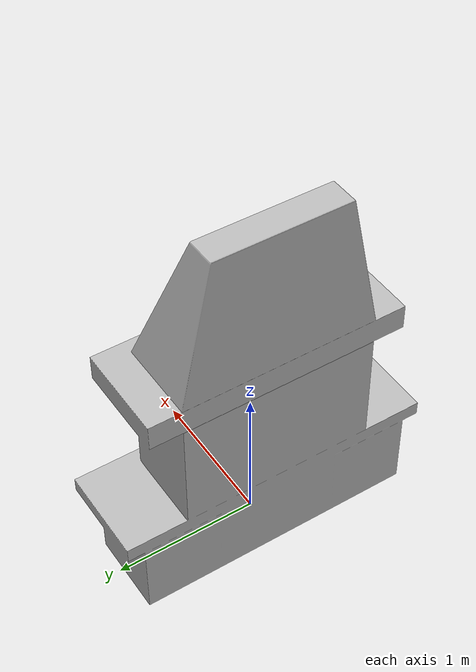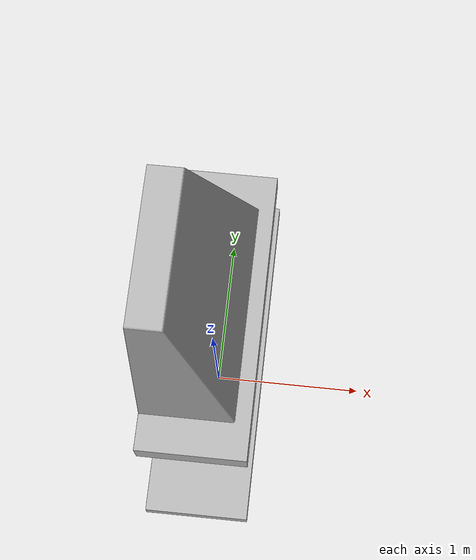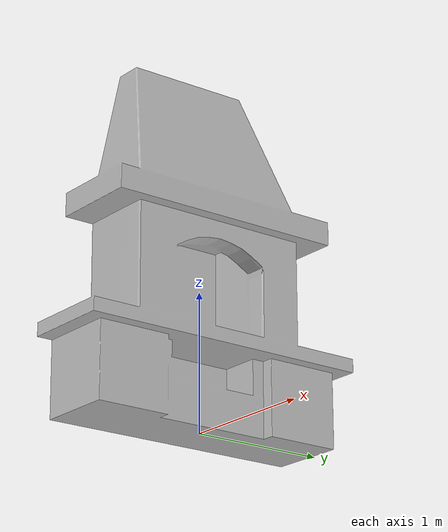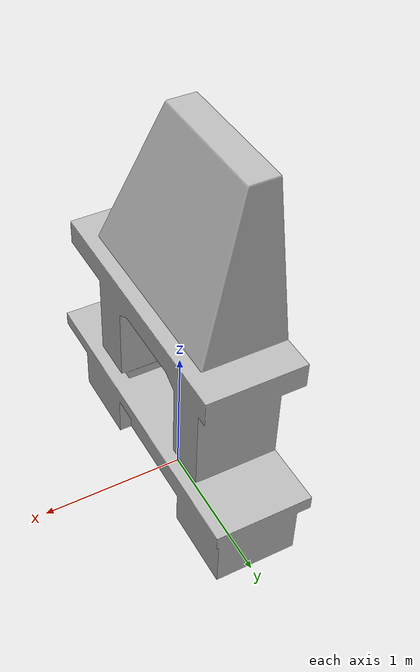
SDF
<?xml version='1.0'?>
<sdf version='1.4'>
  <model name='242'>
    <pose>0 0 0 0 0 0</pose>
    <static>true</static>
    <link name='link'>
      <collision name='collision'>
        <pose>0 0 0 0 0 0</pose>
        <geometry>
          <box>
            <size>0.66 2.18 2</size>
          </box>
        </geometry>
      </collision>
      <visual name='visual'>
        <pose>0 0 0 0 0 0</pose>
        <geometry>
          <mesh><uri>model://242/242.dae</uri></mesh>
        </geometry>
      </visual>
    </link>
  </model>
</sdf>
